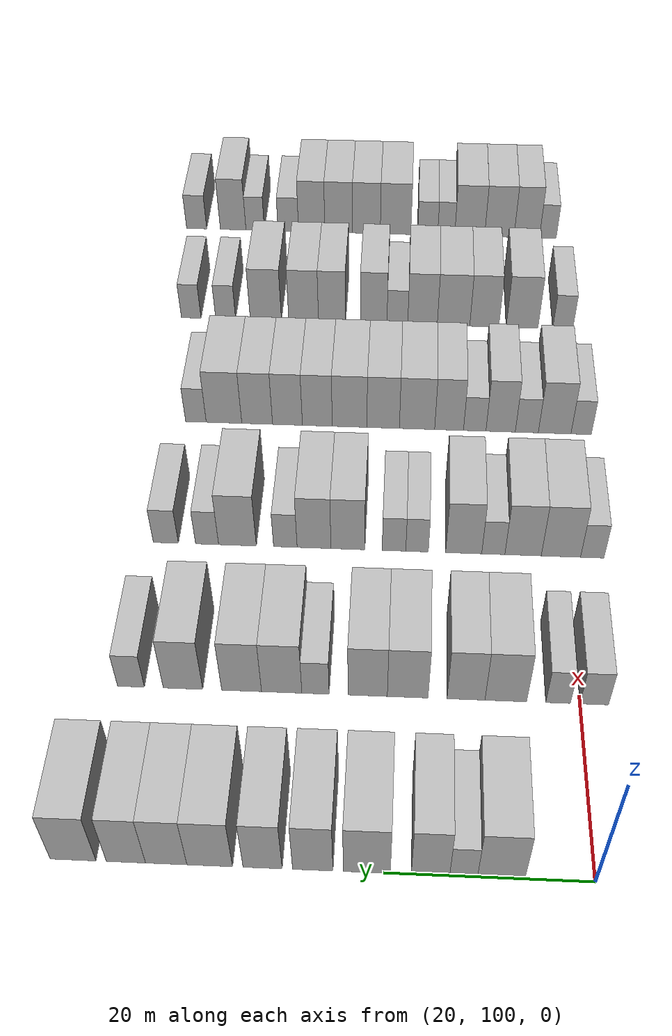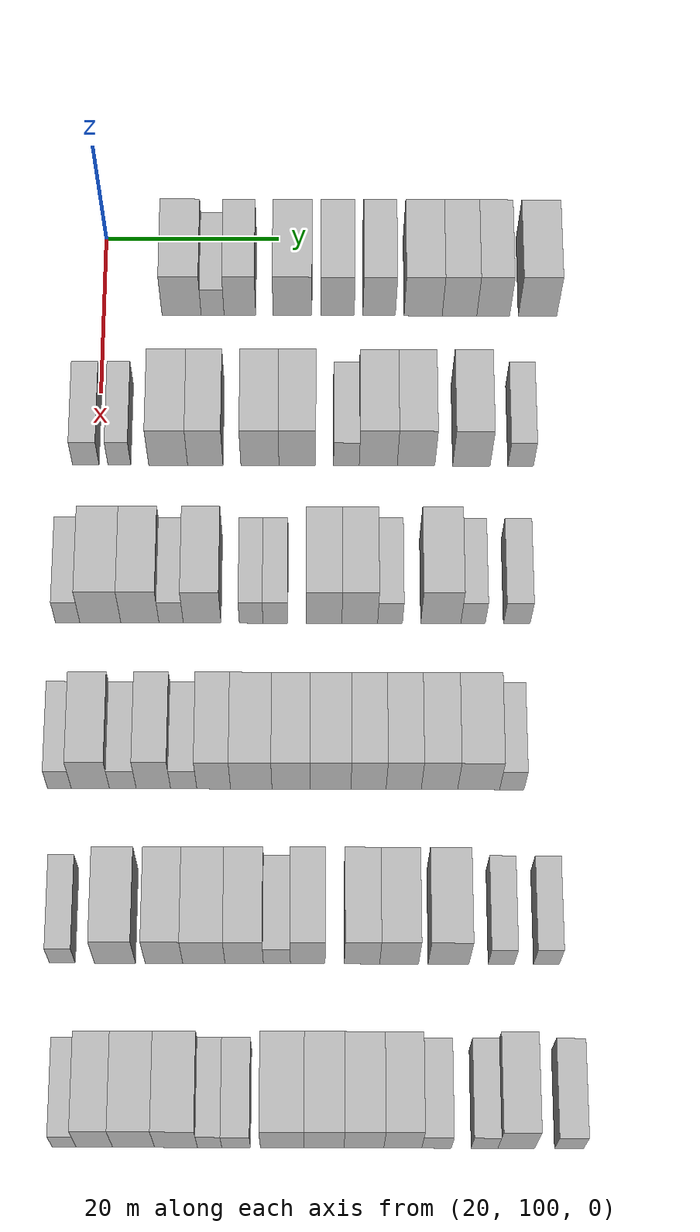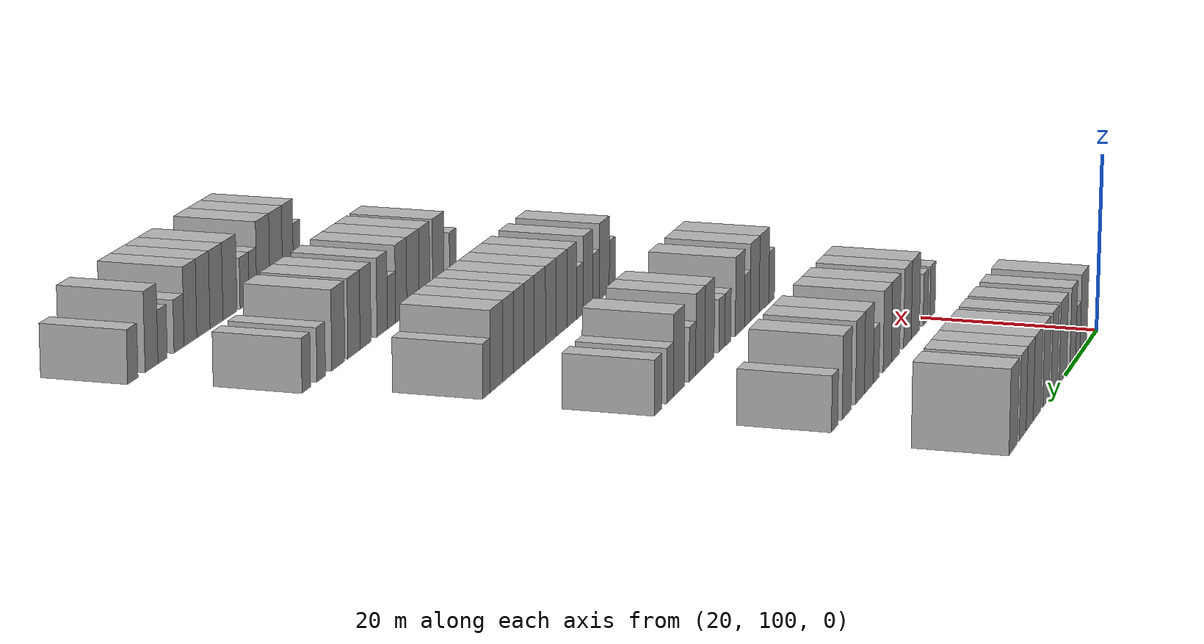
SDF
<sdf version="1.6">
 <world name="default">
  <model name="building_115">
   <static>1</static>
   <pose>25.0000 108.8970 0 0.000000 0.000000 0.000000</pose>
   <link name="link">
    <pose>0 0 4.50 0 0 0</pose>
    <collision name="collision"><geometry><box><size>10.0000 4.4946 9.0000</size></box></geometry></collision>
    <visual name="visual">
     <cast_shadows>0</cast_shadows>
     <geometry><box><size>10.0000 4.4946 9.0000</size></box></geometry>
     <material>
      <script>
       <uri>model://HANNAS_wall/materials/scripts</uri>
       <uri>model://HANNAS_wall/materials/textures</uri>
       <name>vrc/HANNAS_wall</name>
      </script>
     </material>
    </visual>
   </link>
  </model>
  <model name="building_116">
   <static>1</static>
   <pose>25.0000 112.4644 0 0.000000 0.000000 0.000000</pose>
   <link name="link">
    <pose>0 0 3.00 0 0 0</pose>
    <collision name="collision"><geometry><box><size>10.0000 2.6403 6.0000</size></box></geometry></collision>
    <visual name="visual">
     <cast_shadows>0</cast_shadows>
     <geometry><box><size>10.0000 2.6403 6.0000</size></box></geometry>
     <material>
      <script>
       <uri>model://HANNAS_wall/materials/scripts</uri>
       <uri>model://HANNAS_wall/materials/textures</uri>
       <name>vrc/HANNAS_wall</name>
      </script>
     </material>
    </visual>
   </link>
  </model>
  <model name="building_117">
   <static>1</static>
   <pose>25.0000 115.6072 0 0.000000 0.000000 0.000000</pose>
   <link name="link">
    <pose>0 0 4.50 0 0 0</pose>
    <collision name="collision"><geometry><box><size>10.0000 3.6453 9.0000</size></box></geometry></collision>
    <visual name="visual">
     <cast_shadows>0</cast_shadows>
     <geometry><box><size>10.0000 3.6453 9.0000</size></box></geometry>
     <material>
      <script>
       <uri>model://HANNAS_wall/materials/scripts</uri>
       <uri>model://HANNAS_wall/materials/textures</uri>
       <name>vrc/HANNAS_wall</name>
      </script>
     </material>
    </visual>
   </link>
  </model>
  <model name="building_118">
   <static>1</static>
   <pose>25.0000 121.6590 0 0.000000 0.000000 0.000000</pose>
   <link name="link">
    <pose>0 0 4.50 0 0 0</pose>
    <collision name="collision"><geometry><box><size>10.0000 4.4583 9.0000</size></box></geometry></collision>
    <visual name="visual">
     <cast_shadows>0</cast_shadows>
     <geometry><box><size>10.0000 4.4583 9.0000</size></box></geometry>
     <material>
      <script>
       <uri>model://HANNAS_wall/materials/scripts</uri>
       <uri>model://HANNAS_wall/materials/textures</uri>
       <name>vrc/HANNAS_wall</name>
      </script>
     </material>
    </visual>
   </link>
  </model>
  <model name="building_119">
   <static>1</static>
   <pose>25.0000 126.8115 0 0.000000 0.000000 0.000000</pose>
   <link name="link">
    <pose>0 0 4.50 0 0 0</pose>
    <collision name="collision"><geometry><box><size>10.0000 3.8468 9.0000</size></box></geometry></collision>
    <visual name="visual">
     <cast_shadows>0</cast_shadows>
     <geometry><box><size>10.0000 3.8468 9.0000</size></box></geometry>
     <material>
      <script>
       <uri>model://HANNAS_wall/materials/scripts</uri>
       <uri>model://HANNAS_wall/materials/textures</uri>
       <name>vrc/HANNAS_wall</name>
      </script>
     </material>
    </visual>
   </link>
  </model>
  <model name="building_120">
   <static>1</static>
   <pose>25.0000 131.6061 0 0.000000 0.000000 0.000000</pose>
   <link name="link">
    <pose>0 0 4.50 0 0 0</pose>
    <collision name="collision"><geometry><box><size>10.0000 3.7423 9.0000</size></box></geometry></collision>
    <visual name="visual">
     <cast_shadows>0</cast_shadows>
     <geometry><box><size>10.0000 3.7423 9.0000</size></box></geometry>
     <material>
      <script>
       <uri>model://HANNAS_wall/materials/scripts</uri>
       <uri>model://HANNAS_wall/materials/textures</uri>
       <name>vrc/HANNAS_wall</name>
      </script>
     </material>
    </visual>
   </link>
  </model>
  <model name="building_121">
   <static>1</static>
   <pose>25.0000 136.6682 0 0.000000 0.000000 0.000000</pose>
   <link name="link">
    <pose>0 0 4.50 0 0 0</pose>
    <collision name="collision"><geometry><box><size>10.0000 4.3820 9.0000</size></box></geometry></collision>
    <visual name="visual">
     <cast_shadows>0</cast_shadows>
     <geometry><box><size>10.0000 4.3820 9.0000</size></box></geometry>
     <material>
      <script>
       <uri>model://HANNAS_wall/materials/scripts</uri>
       <uri>model://HANNAS_wall/materials/textures</uri>
       <name>vrc/HANNAS_wall</name>
      </script>
     </material>
    </visual>
   </link>
  </model>
  <model name="building_122">
   <static>1</static>
   <pose>25.0000 140.8502 0 0.000000 0.000000 0.000000</pose>
   <link name="link">
    <pose>0 0 4.50 0 0 0</pose>
    <collision name="collision"><geometry><box><size>10.0000 3.9818 9.0000</size></box></geometry></collision>
    <visual name="visual">
     <cast_shadows>0</cast_shadows>
     <geometry><box><size>10.0000 3.9818 9.0000</size></box></geometry>
     <material>
      <script>
       <uri>model://HANNAS_wall/materials/scripts</uri>
       <uri>model://HANNAS_wall/materials/textures</uri>
       <name>vrc/HANNAS_wall</name>
      </script>
     </material>
    </visual>
   </link>
  </model>
  <model name="building_123">
   <static>1</static>
   <pose>25.0000 144.7273 0 0.000000 0.000000 0.000000</pose>
   <link name="link">
    <pose>0 0 4.50 0 0 0</pose>
    <collision name="collision"><geometry><box><size>10.0000 3.7723 9.0000</size></box></geometry></collision>
    <visual name="visual">
     <cast_shadows>0</cast_shadows>
     <geometry><box><size>10.0000 3.7723 9.0000</size></box></geometry>
     <material>
      <script>
       <uri>model://HANNAS_wall/materials/scripts</uri>
       <uri>model://HANNAS_wall/materials/textures</uri>
       <name>vrc/HANNAS_wall</name>
      </script>
     </material>
    </visual>
   </link>
  </model>
  <model name="building_124">
   <static>1</static>
   <pose>25.0000 149.8229 0 0.000000 0.000000 0.000000</pose>
   <link name="link">
    <pose>0 0 4.50 0 0 0</pose>
    <collision name="collision"><geometry><box><size>10.0000 4.4189 9.0000</size></box></geometry></collision>
    <visual name="visual">
     <cast_shadows>0</cast_shadows>
     <geometry><box><size>10.0000 4.4189 9.0000</size></box></geometry>
     <material>
      <script>
       <uri>model://HANNAS_wall/materials/scripts</uri>
       <uri>model://HANNAS_wall/materials/textures</uri>
       <name>vrc/HANNAS_wall</name>
      </script>
     </material>
    </visual>
   </link>
  </model>
  <model name="building_281">
   <static>1</static>
   <pose>44.0000 98.5625 0 0.000000 0.000000 0.000000</pose>
   <link name="link">
    <pose>0 0 3.00 0 0 0</pose>
    <collision name="collision"><geometry><box><size>10.0000 2.9764 6.0000</size></box></geometry></collision>
    <visual name="visual">
     <cast_shadows>0</cast_shadows>
     <geometry><box><size>10.0000 2.9764 6.0000</size></box></geometry>
     <material>
      <script>
       <uri>model://HANNAS_wall/materials/scripts</uri>
       <uri>model://HANNAS_wall/materials/textures</uri>
       <name>vrc/HANNAS_wall</name>
      </script>
     </material>
    </visual>
   </link>
  </model>
  <model name="building_282">
   <static>1</static>
   <pose>44.0000 102.3344 0 0.000000 0.000000 0.000000</pose>
   <link name="link">
    <pose>0 0 3.00 0 0 0</pose>
    <collision name="collision"><geometry><box><size>10.0000 2.5674 6.0000</size></box></geometry></collision>
    <visual name="visual">
     <cast_shadows>0</cast_shadows>
     <geometry><box><size>10.0000 2.5674 6.0000</size></box></geometry>
     <material>
      <script>
       <uri>model://HANNAS_wall/materials/scripts</uri>
       <uri>model://HANNAS_wall/materials/textures</uri>
       <name>vrc/HANNAS_wall</name>
      </script>
     </material>
    </visual>
   </link>
  </model>
  <model name="building_283">
   <static>1</static>
   <pose>44.0000 107.8019 0 0.000000 0.000000 0.000000</pose>
   <link name="link">
    <pose>0 0 4.50 0 0 0</pose>
    <collision name="collision"><geometry><box><size>10.0000 4.3677 9.0000</size></box></geometry></collision>
    <visual name="visual">
     <cast_shadows>0</cast_shadows>
     <geometry><box><size>10.0000 4.3677 9.0000</size></box></geometry>
     <material>
      <script>
       <uri>model://HANNAS_wall/materials/scripts</uri>
       <uri>model://HANNAS_wall/materials/textures</uri>
       <name>vrc/HANNAS_wall</name>
      </script>
     </material>
    </visual>
   </link>
  </model>
  <model name="building_284">
   <static>1</static>
   <pose>44.0000 111.9738 0 0.000000 0.000000 0.000000</pose>
   <link name="link">
    <pose>0 0 4.50 0 0 0</pose>
    <collision name="collision"><geometry><box><size>10.0000 3.9761 9.0000</size></box></geometry></collision>
    <visual name="visual">
     <cast_shadows>0</cast_shadows>
     <geometry><box><size>10.0000 3.9761 9.0000</size></box></geometry>
     <material>
      <script>
       <uri>model://HANNAS_wall/materials/scripts</uri>
       <uri>model://HANNAS_wall/materials/textures</uri>
       <name>vrc/HANNAS_wall</name>
      </script>
     </material>
    </visual>
   </link>
  </model>
  <model name="building_285">
   <static>1</static>
   <pose>44.0000 118.0997 0 0.000000 0.000000 0.000000</pose>
   <link name="link">
    <pose>0 0 4.50 0 0 0</pose>
    <collision name="collision"><geometry><box><size>10.0000 4.2756 9.0000</size></box></geometry></collision>
    <visual name="visual">
     <cast_shadows>0</cast_shadows>
     <geometry><box><size>10.0000 4.2756 9.0000</size></box></geometry>
     <material>
      <script>
       <uri>model://HANNAS_wall/materials/scripts</uri>
       <uri>model://HANNAS_wall/materials/textures</uri>
       <name>vrc/HANNAS_wall</name>
      </script>
     </material>
    </visual>
   </link>
  </model>
  <model name="building_286">
   <static>1</static>
   <pose>44.0000 122.2991 0 0.000000 0.000000 0.000000</pose>
   <link name="link">
    <pose>0 0 4.50 0 0 0</pose>
    <collision name="collision"><geometry><box><size>10.0000 4.1232 9.0000</size></box></geometry></collision>
    <visual name="visual">
     <cast_shadows>0</cast_shadows>
     <geometry><box><size>10.0000 4.1232 9.0000</size></box></geometry>
     <material>
      <script>
       <uri>model://HANNAS_wall/materials/scripts</uri>
       <uri>model://HANNAS_wall/materials/textures</uri>
       <name>vrc/HANNAS_wall</name>
      </script>
     </material>
    </visual>
   </link>
  </model>
  <model name="building_287">
   <static>1</static>
   <pose>44.0000 127.8017 0 0.000000 0.000000 0.000000</pose>
   <link name="link">
    <pose>0 0 3.00 0 0 0</pose>
    <collision name="collision"><geometry><box><size>10.0000 2.8820 6.0000</size></box></geometry></collision>
    <visual name="visual">
     <cast_shadows>0</cast_shadows>
     <geometry><box><size>10.0000 2.8820 6.0000</size></box></geometry>
     <material>
      <script>
       <uri>model://HANNAS_wall/materials/scripts</uri>
       <uri>model://HANNAS_wall/materials/textures</uri>
       <name>vrc/HANNAS_wall</name>
      </script>
     </material>
    </visual>
   </link>
  </model>
  <model name="building_288">
   <static>1</static>
   <pose>44.0000 131.3741 0 0.000000 0.000000 0.000000</pose>
   <link name="link">
    <pose>0 0 4.50 0 0 0</pose>
    <collision name="collision"><geometry><box><size>10.0000 4.2628 9.0000</size></box></geometry></collision>
    <visual name="visual">
     <cast_shadows>0</cast_shadows>
     <geometry><box><size>10.0000 4.2628 9.0000</size></box></geometry>
     <material>
      <script>
       <uri>model://HANNAS_wall/materials/scripts</uri>
       <uri>model://HANNAS_wall/materials/textures</uri>
       <name>vrc/HANNAS_wall</name>
      </script>
     </material>
    </visual>
   </link>
  </model>
  <model name="building_289">
   <static>1</static>
   <pose>44.0000 135.6172 0 0.000000 0.000000 0.000000</pose>
   <link name="link">
    <pose>0 0 4.50 0 0 0</pose>
    <collision name="collision"><geometry><box><size>10.0000 4.2234 9.0000</size></box></geometry></collision>
    <visual name="visual">
     <cast_shadows>0</cast_shadows>
     <geometry><box><size>10.0000 4.2234 9.0000</size></box></geometry>
     <material>
      <script>
       <uri>model://HANNAS_wall/materials/scripts</uri>
       <uri>model://HANNAS_wall/materials/textures</uri>
       <name>vrc/HANNAS_wall</name>
      </script>
     </material>
    </visual>
   </link>
  </model>
  <model name="building_290">
   <static>1</static>
   <pose>44.0000 141.8286 0 0.000000 0.000000 0.000000</pose>
   <link name="link">
    <pose>0 0 4.50 0 0 0</pose>
    <collision name="collision"><geometry><box><size>10.0000 4.1995 9.0000</size></box></geometry></collision>
    <visual name="visual">
     <cast_shadows>0</cast_shadows>
     <geometry><box><size>10.0000 4.1995 9.0000</size></box></geometry>
     <material>
      <script>
       <uri>model://HANNAS_wall/materials/scripts</uri>
       <uri>model://HANNAS_wall/materials/textures</uri>
       <name>vrc/HANNAS_wall</name>
      </script>
     </material>
    </visual>
   </link>
  </model>
  <model name="building_291">
   <static>1</static>
   <pose>44.0000 147.3591 0 0.000000 0.000000 0.000000</pose>
   <link name="link">
    <pose>0 0 3.00 0 0 0</pose>
    <collision name="collision"><geometry><box><size>10.0000 2.8615 6.0000</size></box></geometry></collision>
    <visual name="visual">
     <cast_shadows>0</cast_shadows>
     <geometry><box><size>10.0000 2.8615 6.0000</size></box></geometry>
     <material>
      <script>
       <uri>model://HANNAS_wall/materials/scripts</uri>
       <uri>model://HANNAS_wall/materials/textures</uri>
       <name>vrc/HANNAS_wall</name>
      </script>
     </material>
    </visual>
   </link>
  </model>
  <model name="building_452">
   <static>1</static>
   <pose>63.0000 97.2471 0 0.000000 0.000000 0.000000</pose>
   <link name="link">
    <pose>0 0 3.00 0 0 0</pose>
    <collision name="collision"><geometry><box><size>10.0000 2.6723 6.0000</size></box></geometry></collision>
    <visual name="visual">
     <cast_shadows>0</cast_shadows>
     <geometry><box><size>10.0000 2.6723 6.0000</size></box></geometry>
     <material>
      <script>
       <uri>model://HANNAS_wall/materials/scripts</uri>
       <uri>model://HANNAS_wall/materials/textures</uri>
       <name>vrc/HANNAS_wall</name>
      </script>
     </material>
    </visual>
   </link>
  </model>
  <model name="building_453">
   <static>1</static>
   <pose>63.0000 100.8289 0 0.000000 0.000000 0.000000</pose>
   <link name="link">
    <pose>0 0 4.50 0 0 0</pose>
    <collision name="collision"><geometry><box><size>10.0000 4.4913 9.0000</size></box></geometry></collision>
    <visual name="visual">
     <cast_shadows>0</cast_shadows>
     <geometry><box><size>10.0000 4.4913 9.0000</size></box></geometry>
     <material>
      <script>
       <uri>model://HANNAS_wall/materials/scripts</uri>
       <uri>model://HANNAS_wall/materials/textures</uri>
       <name>vrc/HANNAS_wall</name>
      </script>
     </material>
    </visual>
   </link>
  </model>
  <model name="building_454">
   <static>1</static>
   <pose>63.0000 105.1609 0 0.000000 0.000000 0.000000</pose>
   <link name="link">
    <pose>0 0 4.50 0 0 0</pose>
    <collision name="collision"><geometry><box><size>10.0000 4.1727 9.0000</size></box></geometry></collision>
    <visual name="visual">
     <cast_shadows>0</cast_shadows>
     <geometry><box><size>10.0000 4.1727 9.0000</size></box></geometry>
     <material>
      <script>
       <uri>model://HANNAS_wall/materials/scripts</uri>
       <uri>model://HANNAS_wall/materials/textures</uri>
       <name>vrc/HANNAS_wall</name>
      </script>
     </material>
    </visual>
   </link>
  </model>
  <model name="building_455">
   <static>1</static>
   <pose>63.0000 108.5766 0 0.000000 0.000000 0.000000</pose>
   <link name="link">
    <pose>0 0 3.00 0 0 0</pose>
    <collision name="collision"><geometry><box><size>10.0000 2.6588 6.0000</size></box></geometry></collision>
    <visual name="visual">
     <cast_shadows>0</cast_shadows>
     <geometry><box><size>10.0000 2.6588 6.0000</size></box></geometry>
     <material>
      <script>
       <uri>model://HANNAS_wall/materials/scripts</uri>
       <uri>model://HANNAS_wall/materials/textures</uri>
       <name>vrc/HANNAS_wall</name>
      </script>
     </material>
    </visual>
   </link>
  </model>
  <model name="building_456">
   <static>1</static>
   <pose>63.0000 111.9761 0 0.000000 0.000000 0.000000</pose>
   <link name="link">
    <pose>0 0 4.50 0 0 0</pose>
    <collision name="collision"><geometry><box><size>10.0000 4.1401 9.0000</size></box></geometry></collision>
    <visual name="visual">
     <cast_shadows>0</cast_shadows>
     <geometry><box><size>10.0000 4.1401 9.0000</size></box></geometry>
     <material>
      <script>
       <uri>model://HANNAS_wall/materials/scripts</uri>
       <uri>model://HANNAS_wall/materials/textures</uri>
       <name>vrc/HANNAS_wall</name>
      </script>
     </material>
    </visual>
   </link>
  </model>
  <model name="building_457">
   <static>1</static>
   <pose>63.0000 117.3423 0 0.000000 0.000000 0.000000</pose>
   <link name="link">
    <pose>0 0 3.00 0 0 0</pose>
    <collision name="collision"><geometry><box><size>10.0000 2.5923 6.0000</size></box></geometry></collision>
    <visual name="visual">
     <cast_shadows>0</cast_shadows>
     <geometry><box><size>10.0000 2.5923 6.0000</size></box></geometry>
     <material>
      <script>
       <uri>model://HANNAS_wall/materials/scripts</uri>
       <uri>model://HANNAS_wall/materials/textures</uri>
       <name>vrc/HANNAS_wall</name>
      </script>
     </material>
    </visual>
   </link>
  </model>
  <model name="building_458">
   <static>1</static>
   <pose>63.0000 119.9936 0 0.000000 0.000000 0.000000</pose>
   <link name="link">
    <pose>0 0 3.00 0 0 0</pose>
    <collision name="collision"><geometry><box><size>10.0000 2.7103 6.0000</size></box></geometry></collision>
    <visual name="visual">
     <cast_shadows>0</cast_shadows>
     <geometry><box><size>10.0000 2.7103 6.0000</size></box></geometry>
     <material>
      <script>
       <uri>model://HANNAS_wall/materials/scripts</uri>
       <uri>model://HANNAS_wall/materials/textures</uri>
       <name>vrc/HANNAS_wall</name>
      </script>
     </material>
    </visual>
   </link>
  </model>
  <model name="building_459">
   <static>1</static>
   <pose>63.0000 125.3051 0 0.000000 0.000000 0.000000</pose>
   <link name="link">
    <pose>0 0 4.50 0 0 0</pose>
    <collision name="collision"><geometry><box><size>10.0000 3.9127 9.0000</size></box></geometry></collision>
    <visual name="visual">
     <cast_shadows>0</cast_shadows>
     <geometry><box><size>10.0000 3.9127 9.0000</size></box></geometry>
     <material>
      <script>
       <uri>model://HANNAS_wall/materials/scripts</uri>
       <uri>model://HANNAS_wall/materials/textures</uri>
       <name>vrc/HANNAS_wall</name>
      </script>
     </material>
    </visual>
   </link>
  </model>
  <model name="building_460">
   <static>1</static>
   <pose>63.0000 129.2195 0 0.000000 0.000000 0.000000</pose>
   <link name="link">
    <pose>0 0 4.50 0 0 0</pose>
    <collision name="collision"><geometry><box><size>10.0000 3.9160 9.0000</size></box></geometry></collision>
    <visual name="visual">
     <cast_shadows>0</cast_shadows>
     <geometry><box><size>10.0000 3.9160 9.0000</size></box></geometry>
     <material>
      <script>
       <uri>model://HANNAS_wall/materials/scripts</uri>
       <uri>model://HANNAS_wall/materials/textures</uri>
       <name>vrc/HANNAS_wall</name>
      </script>
     </material>
    </visual>
   </link>
  </model>
  <model name="building_461">
   <static>1</static>
   <pose>63.0000 132.5386 0 0.000000 0.000000 0.000000</pose>
   <link name="link">
    <pose>0 0 3.00 0 0 0</pose>
    <collision name="collision"><geometry><box><size>10.0000 2.7223 6.0000</size></box></geometry></collision>
    <visual name="visual">
     <cast_shadows>0</cast_shadows>
     <geometry><box><size>10.0000 2.7223 6.0000</size></box></geometry>
     <material>
      <script>
       <uri>model://HANNAS_wall/materials/scripts</uri>
       <uri>model://HANNAS_wall/materials/textures</uri>
       <name>vrc/HANNAS_wall</name>
      </script>
     </material>
    </visual>
   </link>
  </model>
  <model name="building_462">
   <static>1</static>
   <pose>63.0000 138.0906 0 0.000000 0.000000 0.000000</pose>
   <link name="link">
    <pose>0 0 4.50 0 0 0</pose>
    <collision name="collision"><geometry><box><size>10.0000 4.3817 9.0000</size></box></geometry></collision>
    <visual name="visual">
     <cast_shadows>0</cast_shadows>
     <geometry><box><size>10.0000 4.3817 9.0000</size></box></geometry>
     <material>
      <script>
       <uri>model://HANNAS_wall/materials/scripts</uri>
       <uri>model://HANNAS_wall/materials/textures</uri>
       <name>vrc/HANNAS_wall</name>
      </script>
     </material>
    </visual>
   </link>
  </model>
  <model name="building_463">
   <static>1</static>
   <pose>63.0000 141.6199 0 0.000000 0.000000 0.000000</pose>
   <link name="link">
    <pose>0 0 3.00 0 0 0</pose>
    <collision name="collision"><geometry><box><size>10.0000 2.6769 6.0000</size></box></geometry></collision>
    <visual name="visual">
     <cast_shadows>0</cast_shadows>
     <geometry><box><size>10.0000 2.6769 6.0000</size></box></geometry>
     <material>
      <script>
       <uri>model://HANNAS_wall/materials/scripts</uri>
       <uri>model://HANNAS_wall/materials/textures</uri>
       <name>vrc/HANNAS_wall</name>
      </script>
     </material>
    </visual>
   </link>
  </model>
  <model name="building_464">
   <static>1</static>
   <pose>63.0000 146.4146 0 0.000000 0.000000 0.000000</pose>
   <link name="link">
    <pose>0 0 3.00 0 0 0</pose>
    <collision name="collision"><geometry><box><size>10.0000 2.9124 6.0000</size></box></geometry></collision>
    <visual name="visual">
     <cast_shadows>0</cast_shadows>
     <geometry><box><size>10.0000 2.9124 6.0000</size></box></geometry>
     <material>
      <script>
       <uri>model://HANNAS_wall/materials/scripts</uri>
       <uri>model://HANNAS_wall/materials/textures</uri>
       <name>vrc/HANNAS_wall</name>
      </script>
     </material>
    </visual>
   </link>
  </model>
  <model name="building_634">
   <static>1</static>
   <pose>82.0000 97.0996 0 0.000000 0.000000 0.000000</pose>
   <link name="link">
    <pose>0 0 3.00 0 0 0</pose>
    <collision name="collision"><geometry><box><size>10.0000 2.5303 6.0000</size></box></geometry></collision>
    <visual name="visual">
     <cast_shadows>0</cast_shadows>
     <geometry><box><size>10.0000 2.5303 6.0000</size></box></geometry>
     <material>
      <script>
       <uri>model://HANNAS_wall/materials/scripts</uri>
       <uri>model://HANNAS_wall/materials/textures</uri>
       <name>vrc/HANNAS_wall</name>
      </script>
     </material>
    </visual>
   </link>
  </model>
  <model name="building_635">
   <static>1</static>
   <pose>82.0000 100.3991 0 0.000000 0.000000 0.000000</pose>
   <link name="link">
    <pose>0 0 4.50 0 0 0</pose>
    <collision name="collision"><geometry><box><size>10.0000 4.0687 9.0000</size></box></geometry></collision>
    <visual name="visual">
     <cast_shadows>0</cast_shadows>
     <geometry><box><size>10.0000 4.0687 9.0000</size></box></geometry>
     <material>
      <script>
       <uri>model://HANNAS_wall/materials/scripts</uri>
       <uri>model://HANNAS_wall/materials/textures</uri>
       <name>vrc/HANNAS_wall</name>
      </script>
     </material>
    </visual>
   </link>
  </model>
  <model name="building_636">
   <static>1</static>
   <pose>82.0000 103.8656 0 0.000000 0.000000 0.000000</pose>
   <link name="link">
    <pose>0 0 3.00 0 0 0</pose>
    <collision name="collision"><geometry><box><size>10.0000 2.8642 6.0000</size></box></geometry></collision>
    <visual name="visual">
     <cast_shadows>0</cast_shadows>
     <geometry><box><size>10.0000 2.8642 6.0000</size></box></geometry>
     <material>
      <script>
       <uri>model://HANNAS_wall/materials/scripts</uri>
       <uri>model://HANNAS_wall/materials/textures</uri>
       <name>vrc/HANNAS_wall</name>
      </script>
     </material>
    </visual>
   </link>
  </model>
  <model name="building_637">
   <static>1</static>
   <pose>82.0000 107.1277 0 0.000000 0.000000 0.000000</pose>
   <link name="link">
    <pose>0 0 4.50 0 0 0</pose>
    <collision name="collision"><geometry><box><size>10.0000 3.6600 9.0000</size></box></geometry></collision>
    <visual name="visual">
     <cast_shadows>0</cast_shadows>
     <geometry><box><size>10.0000 3.6600 9.0000</size></box></geometry>
     <material>
      <script>
       <uri>model://HANNAS_wall/materials/scripts</uri>
       <uri>model://HANNAS_wall/materials/textures</uri>
       <name>vrc/HANNAS_wall</name>
      </script>
     </material>
    </visual>
   </link>
  </model>
  <model name="building_638">
   <static>1</static>
   <pose>82.0000 110.3577 0 0.000000 0.000000 0.000000</pose>
   <link name="link">
    <pose>0 0 3.00 0 0 0</pose>
    <collision name="collision"><geometry><box><size>10.0000 2.8000 6.0000</size></box></geometry></collision>
    <visual name="visual">
     <cast_shadows>0</cast_shadows>
     <geometry><box><size>10.0000 2.8000 6.0000</size></box></geometry>
     <material>
      <script>
       <uri>model://HANNAS_wall/materials/scripts</uri>
       <uri>model://HANNAS_wall/materials/textures</uri>
       <name>vrc/HANNAS_wall</name>
      </script>
     </material>
    </visual>
   </link>
  </model>
  <model name="building_639">
   <static>1</static>
   <pose>82.0000 113.5596 0 0.000000 0.000000 0.000000</pose>
   <link name="link">
    <pose>0 0 4.50 0 0 0</pose>
    <collision name="collision"><geometry><box><size>10.0000 3.6037 9.0000</size></box></geometry></collision>
    <visual name="visual">
     <cast_shadows>0</cast_shadows>
     <geometry><box><size>10.0000 3.6037 9.0000</size></box></geometry>
     <material>
      <script>
       <uri>model://HANNAS_wall/materials/scripts</uri>
       <uri>model://HANNAS_wall/materials/textures</uri>
       <name>vrc/HANNAS_wall</name>
      </script>
     </material>
    </visual>
   </link>
  </model>
  <model name="building_640">
   <static>1</static>
   <pose>82.0000 117.5717 0 0.000000 0.000000 0.000000</pose>
   <link name="link">
    <pose>0 0 4.50 0 0 0</pose>
    <collision name="collision"><geometry><box><size>10.0000 4.4206 9.0000</size></box></geometry></collision>
    <visual name="visual">
     <cast_shadows>0</cast_shadows>
     <geometry><box><size>10.0000 4.4206 9.0000</size></box></geometry>
     <material>
      <script>
       <uri>model://HANNAS_wall/materials/scripts</uri>
       <uri>model://HANNAS_wall/materials/textures</uri>
       <name>vrc/HANNAS_wall</name>
      </script>
     </material>
    </visual>
   </link>
  </model>
  <model name="building_641">
   <static>1</static>
   <pose>82.0000 121.8079 0 0.000000 0.000000 0.000000</pose>
   <link name="link">
    <pose>0 0 4.50 0 0 0</pose>
    <collision name="collision"><geometry><box><size>10.0000 4.0519 9.0000</size></box></geometry></collision>
    <visual name="visual">
     <cast_shadows>0</cast_shadows>
     <geometry><box><size>10.0000 4.0519 9.0000</size></box></geometry>
     <material>
      <script>
       <uri>model://HANNAS_wall/materials/scripts</uri>
       <uri>model://HANNAS_wall/materials/textures</uri>
       <name>vrc/HANNAS_wall</name>
      </script>
     </material>
    </visual>
   </link>
  </model>
  <model name="building_642">
   <static>1</static>
   <pose>82.0000 126.0101 0 0.000000 0.000000 0.000000</pose>
   <link name="link">
    <pose>0 0 4.50 0 0 0</pose>
    <collision name="collision"><geometry><box><size>10.0000 4.3524 9.0000</size></box></geometry></collision>
    <visual name="visual">
     <cast_shadows>0</cast_shadows>
     <geometry><box><size>10.0000 4.3524 9.0000</size></box></geometry>
     <material>
      <script>
       <uri>model://HANNAS_wall/materials/scripts</uri>
       <uri>model://HANNAS_wall/materials/textures</uri>
       <name>vrc/HANNAS_wall</name>
      </script>
     </material>
    </visual>
   </link>
  </model>
  <model name="building_643">
   <static>1</static>
   <pose>82.0000 130.0681 0 0.000000 0.000000 0.000000</pose>
   <link name="link">
    <pose>0 0 4.50 0 0 0</pose>
    <collision name="collision"><geometry><box><size>10.0000 3.7637 9.0000</size></box></geometry></collision>
    <visual name="visual">
     <cast_shadows>0</cast_shadows>
     <geometry><box><size>10.0000 3.7637 9.0000</size></box></geometry>
     <material>
      <script>
       <uri>model://HANNAS_wall/materials/scripts</uri>
       <uri>model://HANNAS_wall/materials/textures</uri>
       <name>vrc/HANNAS_wall</name>
      </script>
     </material>
    </visual>
   </link>
  </model>
  <model name="building_644">
   <static>1</static>
   <pose>82.0000 133.8273 0 0.000000 0.000000 0.000000</pose>
   <link name="link">
    <pose>0 0 4.50 0 0 0</pose>
    <collision name="collision"><geometry><box><size>10.0000 3.7547 9.0000</size></box></geometry></collision>
    <visual name="visual">
     <cast_shadows>0</cast_shadows>
     <geometry><box><size>10.0000 3.7547 9.0000</size></box></geometry>
     <material>
      <script>
       <uri>model://HANNAS_wall/materials/scripts</uri>
       <uri>model://HANNAS_wall/materials/textures</uri>
       <name>vrc/HANNAS_wall</name>
      </script>
     </material>
    </visual>
   </link>
  </model>
  <model name="building_645">
   <static>1</static>
   <pose>82.0000 137.6465 0 0.000000 0.000000 0.000000</pose>
   <link name="link">
    <pose>0 0 4.50 0 0 0</pose>
    <collision name="collision"><geometry><box><size>10.0000 3.8837 9.0000</size></box></geometry></collision>
    <visual name="visual">
     <cast_shadows>0</cast_shadows>
     <geometry><box><size>10.0000 3.8837 9.0000</size></box></geometry>
     <material>
      <script>
       <uri>model://HANNAS_wall/materials/scripts</uri>
       <uri>model://HANNAS_wall/materials/textures</uri>
       <name>vrc/HANNAS_wall</name>
      </script>
     </material>
    </visual>
   </link>
  </model>
  <model name="building_646">
   <static>1</static>
   <pose>82.0000 141.8317 0 0.000000 0.000000 0.000000</pose>
   <link name="link">
    <pose>0 0 4.50 0 0 0</pose>
    <collision name="collision"><geometry><box><size>10.0000 4.4866 9.0000</size></box></geometry></collision>
    <visual name="visual">
     <cast_shadows>0</cast_shadows>
     <geometry><box><size>10.0000 4.4866 9.0000</size></box></geometry>
     <material>
      <script>
       <uri>model://HANNAS_wall/materials/scripts</uri>
       <uri>model://HANNAS_wall/materials/textures</uri>
       <name>vrc/HANNAS_wall</name>
      </script>
     </material>
    </visual>
   </link>
  </model>
  <model name="building_647">
   <static>1</static>
   <pose>82.0000 145.3762 0 0.000000 0.000000 0.000000</pose>
   <link name="link">
    <pose>0 0 3.00 0 0 0</pose>
    <collision name="collision"><geometry><box><size>10.0000 2.6025 6.0000</size></box></geometry></collision>
    <visual name="visual">
     <cast_shadows>0</cast_shadows>
     <geometry><box><size>10.0000 2.6025 6.0000</size></box></geometry>
     <material>
      <script>
       <uri>model://HANNAS_wall/materials/scripts</uri>
       <uri>model://HANNAS_wall/materials/textures</uri>
       <name>vrc/HANNAS_wall</name>
      </script>
     </material>
    </visual>
   </link>
  </model>
  <model name="building_802">
   <static>1</static>
   <pose>101.0000 98.1514 0 0.000000 0.000000 0.000000</pose>
   <link name="link">
    <pose>0 0 3.00 0 0 0</pose>
    <collision name="collision"><geometry><box><size>10.0000 2.6886 6.0000</size></box></geometry></collision>
    <visual name="visual">
     <cast_shadows>0</cast_shadows>
     <geometry><box><size>10.0000 2.6886 6.0000</size></box></geometry>
     <material>
      <script>
       <uri>model://HANNAS_wall/materials/scripts</uri>
       <uri>model://HANNAS_wall/materials/textures</uri>
       <name>vrc/HANNAS_wall</name>
      </script>
     </material>
    </visual>
   </link>
  </model>
  <model name="building_803">
   <static>1</static>
   <pose>101.0000 103.6287 0 0.000000 0.000000 0.000000</pose>
   <link name="link">
    <pose>0 0 4.50 0 0 0</pose>
    <collision name="collision"><geometry><box><size>10.0000 4.2660 9.0000</size></box></geometry></collision>
    <visual name="visual">
     <cast_shadows>0</cast_shadows>
     <geometry><box><size>10.0000 4.2660 9.0000</size></box></geometry>
     <material>
      <script>
       <uri>model://HANNAS_wall/materials/scripts</uri>
       <uri>model://HANNAS_wall/materials/textures</uri>
       <name>vrc/HANNAS_wall</name>
      </script>
     </material>
    </visual>
   </link>
  </model>
  <model name="building_804">
   <static>1</static>
   <pose>101.0000 108.7183 0 0.000000 0.000000 0.000000</pose>
   <link name="link">
    <pose>0 0 4.50 0 0 0</pose>
    <collision name="collision"><geometry><box><size>10.0000 3.9132 9.0000</size></box></geometry></collision>
    <visual name="visual">
     <cast_shadows>0</cast_shadows>
     <geometry><box><size>10.0000 3.9132 9.0000</size></box></geometry>
     <material>
      <script>
       <uri>model://HANNAS_wall/materials/scripts</uri>
       <uri>model://HANNAS_wall/materials/textures</uri>
       <name>vrc/HANNAS_wall</name>
      </script>
     </material>
    </visual>
   </link>
  </model>
  <model name="building_805">
   <static>1</static>
   <pose>101.0000 112.8691 0 0.000000 0.000000 0.000000</pose>
   <link name="link">
    <pose>0 0 4.50 0 0 0</pose>
    <collision name="collision"><geometry><box><size>10.0000 4.3885 9.0000</size></box></geometry></collision>
    <visual name="visual">
     <cast_shadows>0</cast_shadows>
     <geometry><box><size>10.0000 4.3885 9.0000</size></box></geometry>
     <material>
      <script>
       <uri>model://HANNAS_wall/materials/scripts</uri>
       <uri>model://HANNAS_wall/materials/textures</uri>
       <name>vrc/HANNAS_wall</name>
      </script>
     </material>
    </visual>
   </link>
  </model>
  <model name="building_806">
   <static>1</static>
   <pose>101.0000 117.0586 0 0.000000 0.000000 0.000000</pose>
   <link name="link">
    <pose>0 0 4.50 0 0 0</pose>
    <collision name="collision"><geometry><box><size>10.0000 3.9904 9.0000</size></box></geometry></collision>
    <visual name="visual">
     <cast_shadows>0</cast_shadows>
     <geometry><box><size>10.0000 3.9904 9.0000</size></box></geometry>
     <material>
      <script>
       <uri>model://HANNAS_wall/materials/scripts</uri>
       <uri>model://HANNAS_wall/materials/textures</uri>
       <name>vrc/HANNAS_wall</name>
      </script>
     </material>
    </visual>
   </link>
  </model>
  <model name="building_807">
   <static>1</static>
   <pose>101.0000 120.4577 0 0.000000 0.000000 0.000000</pose>
   <link name="link">
    <pose>0 0 3.00 0 0 0</pose>
    <collision name="collision"><geometry><box><size>10.0000 2.8078 6.0000</size></box></geometry></collision>
    <visual name="visual">
     <cast_shadows>0</cast_shadows>
     <geometry><box><size>10.0000 2.8078 6.0000</size></box></geometry>
     <material>
      <script>
       <uri>model://HANNAS_wall/materials/scripts</uri>
       <uri>model://HANNAS_wall/materials/textures</uri>
       <name>vrc/HANNAS_wall</name>
      </script>
     </material>
    </visual>
   </link>
  </model>
  <model name="building_808">
   <static>1</static>
   <pose>101.0000 123.6633 0 0.000000 0.000000 0.000000</pose>
   <link name="link">
    <pose>0 0 4.50 0 0 0</pose>
    <collision name="collision"><geometry><box><size>10.0000 3.6034 9.0000</size></box></geometry></collision>
    <visual name="visual">
     <cast_shadows>0</cast_shadows>
     <geometry><box><size>10.0000 3.6034 9.0000</size></box></geometry>
     <material>
      <script>
       <uri>model://HANNAS_wall/materials/scripts</uri>
       <uri>model://HANNAS_wall/materials/textures</uri>
       <name>vrc/HANNAS_wall</name>
      </script>
     </material>
    </visual>
   </link>
  </model>
  <model name="building_809">
   <static>1</static>
   <pose>101.0000 129.3025 0 0.000000 0.000000 0.000000</pose>
   <link name="link">
    <pose>0 0 4.50 0 0 0</pose>
    <collision name="collision"><geometry><box><size>10.0000 3.6748 9.0000</size></box></geometry></collision>
    <visual name="visual">
     <cast_shadows>0</cast_shadows>
     <geometry><box><size>10.0000 3.6748 9.0000</size></box></geometry>
     <material>
      <script>
       <uri>model://HANNAS_wall/materials/scripts</uri>
       <uri>model://HANNAS_wall/materials/textures</uri>
       <name>vrc/HANNAS_wall</name>
      </script>
     </material>
    </visual>
   </link>
  </model>
  <model name="building_810">
   <static>1</static>
   <pose>101.0000 133.1616 0 0.000000 0.000000 0.000000</pose>
   <link name="link">
    <pose>0 0 4.50 0 0 0</pose>
    <collision name="collision"><geometry><box><size>10.0000 4.0434 9.0000</size></box></geometry></collision>
    <visual name="visual">
     <cast_shadows>0</cast_shadows>
     <geometry><box><size>10.0000 4.0434 9.0000</size></box></geometry>
     <material>
      <script>
       <uri>model://HANNAS_wall/materials/scripts</uri>
       <uri>model://HANNAS_wall/materials/textures</uri>
       <name>vrc/HANNAS_wall</name>
      </script>
     </material>
    </visual>
   </link>
  </model>
  <model name="building_811">
   <static>1</static>
   <pose>101.0000 138.3031 0 0.000000 0.000000 0.000000</pose>
   <link name="link">
    <pose>0 0 4.50 0 0 0</pose>
    <collision name="collision"><geometry><box><size>10.0000 4.2396 9.0000</size></box></geometry></collision>
    <visual name="visual">
     <cast_shadows>0</cast_shadows>
     <geometry><box><size>10.0000 4.2396 9.0000</size></box></geometry>
     <material>
      <script>
       <uri>model://HANNAS_wall/materials/scripts</uri>
       <uri>model://HANNAS_wall/materials/textures</uri>
       <name>vrc/HANNAS_wall</name>
      </script>
     </material>
    </visual>
   </link>
  </model>
  <model name="building_812">
   <static>1</static>
   <pose>101.0000 143.7816 0 0.000000 0.000000 0.000000</pose>
   <link name="link">
    <pose>0 0 3.00 0 0 0</pose>
    <collision name="collision"><geometry><box><size>10.0000 2.7174 6.0000</size></box></geometry></collision>
    <visual name="visual">
     <cast_shadows>0</cast_shadows>
     <geometry><box><size>10.0000 2.7174 6.0000</size></box></geometry>
     <material>
      <script>
       <uri>model://HANNAS_wall/materials/scripts</uri>
       <uri>model://HANNAS_wall/materials/textures</uri>
       <name>vrc/HANNAS_wall</name>
      </script>
     </material>
    </visual>
   </link>
  </model>
  <model name="building_813">
   <static>1</static>
   <pose>101.0000 148.4800 0 0.000000 0.000000 0.000000</pose>
   <link name="link">
    <pose>0 0 3.00 0 0 0</pose>
    <collision name="collision"><geometry><box><size>10.0000 2.6794 6.0000</size></box></geometry></collision>
    <visual name="visual">
     <cast_shadows>0</cast_shadows>
     <geometry><box><size>10.0000 2.6794 6.0000</size></box></geometry>
     <material>
      <script>
       <uri>model://HANNAS_wall/materials/scripts</uri>
       <uri>model://HANNAS_wall/materials/textures</uri>
       <name>vrc/HANNAS_wall</name>
      </script>
     </material>
    </visual>
   </link>
  </model>
  <model name="building_970">
   <static>1</static>
   <pose>120.0000 99.0884 0 0.000000 0.000000 0.000000</pose>
   <link name="link">
    <pose>0 0 3.00 0 0 0</pose>
    <collision name="collision"><geometry><box><size>10.0000 2.4283 6.0000</size></box></geometry></collision>
    <visual name="visual">
     <cast_shadows>0</cast_shadows>
     <geometry><box><size>10.0000 2.4283 6.0000</size></box></geometry>
     <material>
      <script>
       <uri>model://HANNAS_wall/materials/scripts</uri>
       <uri>model://HANNAS_wall/materials/textures</uri>
       <name>vrc/HANNAS_wall</name>
      </script>
     </material>
    </visual>
   </link>
  </model>
  <model name="building_971">
   <static>1</static>
   <pose>120.0000 102.1419 0 0.000000 0.000000 0.000000</pose>
   <link name="link">
    <pose>0 0 4.50 0 0 0</pose>
    <collision name="collision"><geometry><box><size>10.0000 3.6786 9.0000</size></box></geometry></collision>
    <visual name="visual">
     <cast_shadows>0</cast_shadows>
     <geometry><box><size>10.0000 3.6786 9.0000</size></box></geometry>
     <material>
      <script>
       <uri>model://HANNAS_wall/materials/scripts</uri>
       <uri>model://HANNAS_wall/materials/textures</uri>
       <name>vrc/HANNAS_wall</name>
      </script>
     </material>
    </visual>
   </link>
  </model>
  <model name="building_972">
   <static>1</static>
   <pose>120.0000 106.1048 0 0.000000 0.000000 0.000000</pose>
   <link name="link">
    <pose>0 0 4.50 0 0 0</pose>
    <collision name="collision"><geometry><box><size>10.0000 4.2473 9.0000</size></box></geometry></collision>
    <visual name="visual">
     <cast_shadows>0</cast_shadows>
     <geometry><box><size>10.0000 4.2473 9.0000</size></box></geometry>
     <material>
      <script>
       <uri>model://HANNAS_wall/materials/scripts</uri>
       <uri>model://HANNAS_wall/materials/textures</uri>
       <name>vrc/HANNAS_wall</name>
      </script>
     </material>
    </visual>
   </link>
  </model>
  <model name="building_973">
   <static>1</static>
   <pose>120.0000 110.3944 0 0.000000 0.000000 0.000000</pose>
   <link name="link">
    <pose>0 0 4.50 0 0 0</pose>
    <collision name="collision"><geometry><box><size>10.0000 4.3317 9.0000</size></box></geometry></collision>
    <visual name="visual">
     <cast_shadows>0</cast_shadows>
     <geometry><box><size>10.0000 4.3317 9.0000</size></box></geometry>
     <material>
      <script>
       <uri>model://HANNAS_wall/materials/scripts</uri>
       <uri>model://HANNAS_wall/materials/textures</uri>
       <name>vrc/HANNAS_wall</name>
      </script>
     </material>
    </visual>
   </link>
  </model>
  <model name="building_974">
   <static>1</static>
   <pose>120.0000 113.7958 0 0.000000 0.000000 0.000000</pose>
   <link name="link">
    <pose>0 0 3.00 0 0 0</pose>
    <collision name="collision"><geometry><box><size>10.0000 2.4712 6.0000</size></box></geometry></collision>
    <visual name="visual">
     <cast_shadows>0</cast_shadows>
     <geometry><box><size>10.0000 2.4712 6.0000</size></box></geometry>
     <material>
      <script>
       <uri>model://HANNAS_wall/materials/scripts</uri>
       <uri>model://HANNAS_wall/materials/textures</uri>
       <name>vrc/HANNAS_wall</name>
      </script>
     </material>
    </visual>
   </link>
  </model>
  <model name="building_975">
   <static>1</static>
   <pose>120.0000 116.4846 0 0.000000 0.000000 0.000000</pose>
   <link name="link">
    <pose>0 0 3.00 0 0 0</pose>
    <collision name="collision"><geometry><box><size>10.0000 2.9063 6.0000</size></box></geometry></collision>
    <visual name="visual">
     <cast_shadows>0</cast_shadows>
     <geometry><box><size>10.0000 2.9063 6.0000</size></box></geometry>
     <material>
      <script>
       <uri>model://HANNAS_wall/materials/scripts</uri>
       <uri>model://HANNAS_wall/materials/textures</uri>
       <name>vrc/HANNAS_wall</name>
      </script>
     </material>
    </visual>
   </link>
  </model>
  <model name="building_976">
   <static>1</static>
   <pose>120.0000 121.1510 0 0.000000 0.000000 0.000000</pose>
   <link name="link">
    <pose>0 0 4.50 0 0 0</pose>
    <collision name="collision"><geometry><box><size>10.0000 4.4266 9.0000</size></box></geometry></collision>
    <visual name="visual">
     <cast_shadows>0</cast_shadows>
     <geometry><box><size>10.0000 4.4266 9.0000</size></box></geometry>
     <material>
      <script>
       <uri>model://HANNAS_wall/materials/scripts</uri>
       <uri>model://HANNAS_wall/materials/textures</uri>
       <name>vrc/HANNAS_wall</name>
      </script>
     </material>
    </visual>
   </link>
  </model>
  <model name="building_977">
   <static>1</static>
   <pose>120.0000 125.3784 0 0.000000 0.000000 0.000000</pose>
   <link name="link">
    <pose>0 0 4.50 0 0 0</pose>
    <collision name="collision"><geometry><box><size>10.0000 4.0281 9.0000</size></box></geometry></collision>
    <visual name="visual">
     <cast_shadows>0</cast_shadows>
     <geometry><box><size>10.0000 4.0281 9.0000</size></box></geometry>
     <material>
      <script>
       <uri>model://HANNAS_wall/materials/scripts</uri>
       <uri>model://HANNAS_wall/materials/textures</uri>
       <name>vrc/HANNAS_wall</name>
      </script>
     </material>
    </visual>
   </link>
  </model>
  <model name="building_978">
   <static>1</static>
   <pose>120.0000 129.4104 0 0.000000 0.000000 0.000000</pose>
   <link name="link">
    <pose>0 0 4.50 0 0 0</pose>
    <collision name="collision"><geometry><box><size>10.0000 4.0360 9.0000</size></box></geometry></collision>
    <visual name="visual">
     <cast_shadows>0</cast_shadows>
     <geometry><box><size>10.0000 4.0360 9.0000</size></box></geometry>
     <material>
      <script>
       <uri>model://HANNAS_wall/materials/scripts</uri>
       <uri>model://HANNAS_wall/materials/textures</uri>
       <name>vrc/HANNAS_wall</name>
      </script>
     </material>
    </visual>
   </link>
  </model>
  <model name="building_979">
   <static>1</static>
   <pose>120.0000 133.3521 0 0.000000 0.000000 0.000000</pose>
   <link name="link">
    <pose>0 0 4.50 0 0 0</pose>
    <collision name="collision"><geometry><box><size>10.0000 3.8474 9.0000</size></box></geometry></collision>
    <visual name="visual">
     <cast_shadows>0</cast_shadows>
     <geometry><box><size>10.0000 3.8474 9.0000</size></box></geometry>
     <material>
      <script>
       <uri>model://HANNAS_wall/materials/scripts</uri>
       <uri>model://HANNAS_wall/materials/textures</uri>
       <name>vrc/HANNAS_wall</name>
      </script>
     </material>
    </visual>
   </link>
  </model>
  <model name="building_980">
   <static>1</static>
   <pose>120.0000 136.7723 0 0.000000 0.000000 0.000000</pose>
   <link name="link">
    <pose>0 0 3.00 0 0 0</pose>
    <collision name="collision"><geometry><box><size>10.0000 2.9930 6.0000</size></box></geometry></collision>
    <visual name="visual">
     <cast_shadows>0</cast_shadows>
     <geometry><box><size>10.0000 2.9930 6.0000</size></box></geometry>
     <material>
      <script>
       <uri>model://HANNAS_wall/materials/scripts</uri>
       <uri>model://HANNAS_wall/materials/textures</uri>
       <name>vrc/HANNAS_wall</name>
      </script>
     </material>
    </visual>
   </link>
  </model>
  <model name="building_981">
   <static>1</static>
   <pose>120.0000 141.6196 0 0.000000 0.000000 0.000000</pose>
   <link name="link">
    <pose>0 0 3.00 0 0 0</pose>
    <collision name="collision"><geometry><box><size>10.0000 2.7016 6.0000</size></box></geometry></collision>
    <visual name="visual">
     <cast_shadows>0</cast_shadows>
     <geometry><box><size>10.0000 2.7016 6.0000</size></box></geometry>
     <material>
      <script>
       <uri>model://HANNAS_wall/materials/scripts</uri>
       <uri>model://HANNAS_wall/materials/textures</uri>
       <name>vrc/HANNAS_wall</name>
      </script>
     </material>
    </visual>
   </link>
  </model>
  <model name="building_982">
   <static>1</static>
   <pose>120.0000 144.8430 0 0.000000 0.000000 0.000000</pose>
   <link name="link">
    <pose>0 0 4.50 0 0 0</pose>
    <collision name="collision"><geometry><box><size>10.0000 3.7451 9.0000</size></box></geometry></collision>
    <visual name="visual">
     <cast_shadows>0</cast_shadows>
     <geometry><box><size>10.0000 3.7451 9.0000</size></box></geometry>
     <material>
      <script>
       <uri>model://HANNAS_wall/materials/scripts</uri>
       <uri>model://HANNAS_wall/materials/textures</uri>
       <name>vrc/HANNAS_wall</name>
      </script>
     </material>
    </visual>
   </link>
  </model>
  <model name="building_983">
   <static>1</static>
   <pose>120.0000 150.1865 0 0.000000 0.000000 0.000000</pose>
   <link name="link">
    <pose>0 0 3.00 0 0 0</pose>
    <collision name="collision"><geometry><box><size>10.0000 2.9420 6.0000</size></box></geometry></collision>
    <visual name="visual">
     <cast_shadows>0</cast_shadows>
     <geometry><box><size>10.0000 2.9420 6.0000</size></box></geometry>
     <material>
      <script>
       <uri>model://HANNAS_wall/materials/scripts</uri>
       <uri>model://HANNAS_wall/materials/textures</uri>
       <name>vrc/HANNAS_wall</name>
      </script>
     </material>
    </visual>
   </link>
  </model>
 </world>
</sdf>
